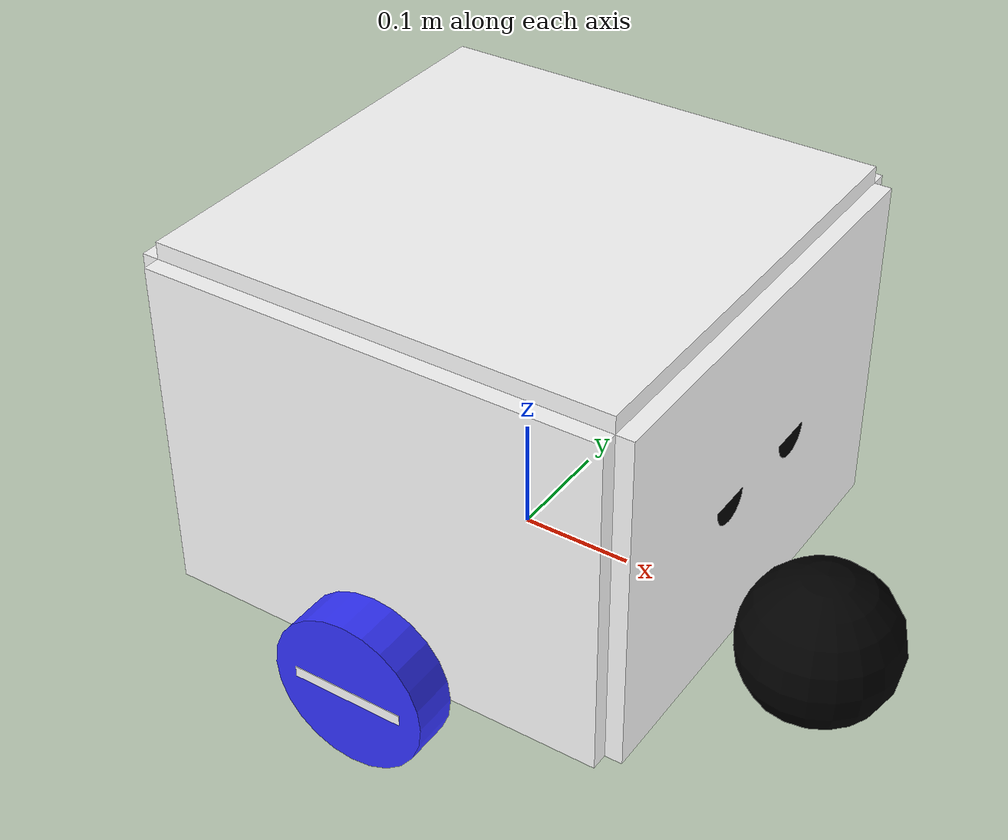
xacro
<?xml version="1.0"?>
<robot xmlns:xacro="http://www.ros.org/wiki/xacro">

    <xacro:include filename="$(find navigation_bot)/description/inertial_macros.xacro"/>
<!--================================================================ COLOURS ==================================================================================================== -->

    <material name="white">
        <color rgba="1 1 1 1"/>
    </material>

    <material name="orange">
        <color rgba="1 0.3 0.1 1"/>
    </material>

    <material name="blue">
        <color rgba="0.2 0.2 1 1"/>
    </material>

    <material name="red">
        <color rgba="1 0 0 1"/>
    </material>

    <material name="black">
        <color rgba="0 0 0 1"/>
    </material>

<!--================================================================ LINKS ====================================================================================================== -->

    <link name="left_pane"> <!-- base_link LINK -->
        <visual>
            <geometry>
                <box size="0.4 0.03 0.3"/>
            </geometry>
            <material name="white"/>
        </visual>
        <collision>
            <geometry>
                <box size="0.4 0.03 0.3"/>
            </geometry>
        </collision>
        <xacro:inertial_box mass="0.5" x="0.4" y="0.03" z="0.3">
            <origin xyz="0 0 0" rpy="0 0 0"/>
        </xacro:inertial_box>
    </link>

    <link name="front_pane"> <!-- base_link LINK -->
        <visual>
            <geometry>
                <box size="0.4 0.03 0.3"/>
            </geometry>
            <material name="white"/>
        </visual>

        <!-- Hole 1 (left front) -->
        <visual>
          <geometry>
            <cylinder radius="0.02" length="0.01"/>
          </geometry>
          <material name="black"/>
          <origin xyz="-0.05 -0.01 0" rpy="1.57 0 0"/>
        </visual>

        <!-- Hole 2 (right front) -->
        <visual>
          <geometry>
            <cylinder radius="0.02" length="0.01"/>
          </geometry>
          <material name="black"/>
          <origin xyz="0.05 -0.01 0" rpy="1.57 0 0"/>
        </visual>

        <collision>
            <geometry>
                <box size="0.4 0.03 0.3"/>
            </geometry>
        </collision>
        <xacro:inertial_box mass="0.5" x="0.4" y="0.03" z="0.3">
            <origin xyz="0 0 0" rpy="0 0 0"/>
        </xacro:inertial_box>
    </link>

    <link name="back_pane"> <!-- base_link LINK -->
        <visual>
            <geometry>
                <box size="0.4 0.03 0.3"/>
            </geometry>
            <material name="white"/>
        </visual>
        <collision>
            <geometry>
                <box size="0.4 0.03 0.3"/>
            </geometry>
        </collision>
        <xacro:inertial_box mass="0.5" x="0.4" y="0.03" z="0.3">
            <origin xyz="0 0 0" rpy="0 0 0"/>
        </xacro:inertial_box>
    </link>

    <link name="right_pane"> <!-- base_link LINK -->
        <visual>
            <geometry>
                <box size="0.4 0.03 0.3"/>
            </geometry>
            <material name="white"/>
        </visual>
        <collision>
            <geometry>
                <box size="0.4 0.03 0.3"/>
            </geometry>
        </collision>
        <xacro:inertial_box mass="0.5" x="0.4" y="0.03" z="0.3">
            <origin xyz="0 0 0" rpy="0 0 0"/>
        </xacro:inertial_box>
    </link>

    <link name="base_link"> <!-- base_link LINK -->
    </link>

    <link name="front_wheel">
        <visual>
            <geometry>
                <sphere radius= "0.07"/>
            </geometry>
            <material name="black"/>
        </visual>
        <collision>
            <geometry>
                <sphere radius= "0.07"/>
            </geometry>
        </collision>
    </link>

    <link name="back_wheel">
        <visual>
            <geometry>
                <sphere radius= "0.07"/>
            </geometry>
            <material name="black"/>
        </visual>
        <collision>
            <geometry>
                <sphere radius= "0.07"/>
            </geometry>
        </collision>
    </link>

    <link name="back_left_wheel">
        <visual>
            <geometry>
                <cylinder radius= "0.07" length="0.04"/>
            </geometry>
            <material name="blue"/>
        </visual>
        <collision>
            <geometry>
                <cylinder radius= "0.07" length="0.04"/>
            </geometry>
        </collision>
        <xacro:inertial_cylinder mass="0.1" length="0.04" radius="0.07">
            <origin xyz="0 0 0" rpy="0 0 0"/>
        </xacro:inertial_cylinder>
    </link>

    <link name="indicator_back_left_link">
        <visual>
            <geometry>
                <box size="0.1 0.01 0.001"/>
            </geometry>
            <material name="white"/>
        </visual>
    </link>

    <link name="back_right_wheel">
        <visual>
            <geometry>
                <cylinder radius= "0.07" length="0.04"/>
            </geometry>
            <material name="blue"/>
        </visual>
        <collision>
            <geometry>
                <cylinder radius= "0.07" length="0.04"/>
            </geometry>
        </collision>
        <xacro:inertial_cylinder mass="0.1" length="0.04" radius="0.07">
            <origin xyz="0 0 0" rpy="0 0 0"/>
        </xacro:inertial_cylinder>
    </link>

    <link name="indicator_back_right_link">
        <visual>
            <geometry>
                <box size="0.1 0.01 0.001"/>
            </geometry>
            <material name="white"/>
        </visual>
    </link>

    <link name="camera_platform_link">
        <visual>
            <geometry>
                <box size="0.4 0.03 0.4"/>
            </geometry>
            <material name="white"/>
        </visual>
        <collision>
            <geometry>
                <box size="0.4 0.03 0.4"/>
            </geometry>
        </collision>
        <xacro:inertial_box mass="0.5" x="0.4" y="0.03" z="0.4">
            <origin xyz="0 0 0" rpy="0 0 0"/>
        </xacro:inertial_box>
    </link>

<!--================================================================ REFERENCES ================================================================================================= -->
    <gazebo reference="base_link">
        <material>Gazebo/White</material>
    </gazebo>

    <gazebo reference="back_left_wheel">
        <mu1>1.7</mu1>
        <mu2>1.7</mu2>
        <material>Gazebo/Blue</material>
    </gazebo>

    <gazebo reference="indicator_back_left_link">
        <material>Gazebo/White</material>
    </gazebo>

    <gazebo reference="front_wheel">
        <mu1>0.0007</mu1>
        <mu2>0.0007</mu2>
        <material>Gazebo/Black</material>
    </gazebo>

    <gazebo reference="back_wheel">
        <mu1>0.0007</mu1>
        <mu2>0.0007</mu2>
        <material>Gazebo/Black</material>
    </gazebo>

    <gazebo reference="back_right_wheel">
        <mu1>1.7</mu1>
        <mu2>1.7</mu2>
        <material>Gazebo/Blue</material>
    </gazebo>

    <gazebo reference="indicator_back_right_link">
        <material>Gazebo/White</material>
    </gazebo>

<!--================================================================ JOINTS ===================================================================================================== -->

    <joint name="left_reference" type="fixed">
        <parent link="base_link"/>
        <child link="left_pane"/>
        <origin xyz="0 -0.2 0.15"/>
    </joint>

    <joint name="right_reference" type="fixed">
        <parent link="base_link"/>
        <child link="right_pane"/>
        <origin xyz="0 0.2 0.15"/>
    </joint>

    <joint name="front_reference" type="fixed">
        <parent link="base_link"/>
        <child link="front_pane"/>
        <origin xyz="0.2 0 0.15" rpy="0 0 ${pi/2}"/>
    </joint>

    <joint name="back_reference" type="fixed">
        <parent link="base_link"/>
        <child link="back_pane"/>
        <origin xyz="-0.2 0 0.15" rpy="0 0 ${pi/2}"/>
    </joint>

    <joint name="Back_left_wheel_joint" type="continuous">
        <parent link="base_link"/>
        <child link="back_left_wheel"/>
        <origin xyz="0 -0.235 0" rpy="${pi/2} 0 0"/>
        <axis xyz ="0 0 -1"/>
    </joint>

    <joint name="front_wheel_joint" type="fixed">
        <parent link="front_pane"/>
        <child link="front_wheel"/>
        <origin xyz="0 -0.08 -0.15"/>
    </joint>

    <joint name="back_wheel_joint" type="fixed">
        <parent link="back_pane"/>
        <child link="back_wheel"/>
        <origin xyz="0 0.08 -0.15"/>
    </joint>

    <joint name="indicator_back_left_joint" type="fixed">
        <parent link ="back_left_wheel"/>
        <child link ="indicator_back_left_link"/>
        <origin xyz="0 0 0.02"/>
    </joint>

    <joint name="Back_right_wheel_joint" type="continuous">
        <parent link="base_link"/>
        <child link="back_right_wheel"/>
        <origin xyz="0 0.235 0" rpy="${pi/2} 0 0"/>
        <axis xyz ="0 0 -1"/>
    </joint>

    <joint name="indicator_back_right_joint" type="fixed">
        <parent link ="back_right_wheel"/>
        <child link ="indicator_back_right_link"/>
        <origin xyz="0 0 -0.02"/>
    </joint>

    <joint name="camera_platform_joint" type="fixed">
        <parent link="base_link"/>
        <child link="camera_platform_link"/>
        <origin xyz="0 0 0.300" rpy="${pi/2} 0 0"/>
    </joint>

</robot>

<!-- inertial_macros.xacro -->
<robot xmlns:xacro="http://www.ros.org/wiki/xacro">

    <!-- Specify some standard inertial calculations https://en.wikipedia.org/wiki/List_of_moments_of_inertia -->
    <!-- These make use of xacro's mathematical functionality -->

    <xacro:macro name="inertial_sphere" params="mass radius *origin">
        <inertial>
            <xacro:insert_block name="origin"/>
            <mass value="${mass}" />
            <inertia ixx="${(2/5) * mass * (radius*radius)}" ixy="0.0" ixz="0.0"
                    iyy="${(2/5) * mass * (radius*radius)}" iyz="0.0"
                    izz="${(2/5) * mass * (radius*radius)}" />
        </inertial>
    </xacro:macro>

    <xacro:macro name="inertial_box" params="mass x y z *origin">
        <inertial>
            <xacro:insert_block name="origin"/>
            <mass value="${mass}" />
            <inertia ixx="${(1/12) * mass * (y*y+z*z)}" ixy="0.0" ixz="0.0"
                    iyy="${(1/12) * mass * (x*x+z*z)}" iyz="0.0"
                    izz="${(1/12) * mass * (x*x+y*y)}" />
        </inertial>
    </xacro:macro>

    <xacro:macro name="inertial_cylinder" params="mass length radius *origin">
        <inertial>
            <xacro:insert_block name="origin"/>
            <mass value="${mass}" />
            <inertia ixx="${(1/12) * mass * (3*radius*radius + length*length)}" ixy="0.0" ixz="0.0"
                    iyy="${(1/12) * mass * (3*radius*radius + length*length)}" iyz="0.0"
                    izz="${(1/2) * mass * (radius*radius)}" />
        </inertial>
    </xacro:macro>

</robot>
